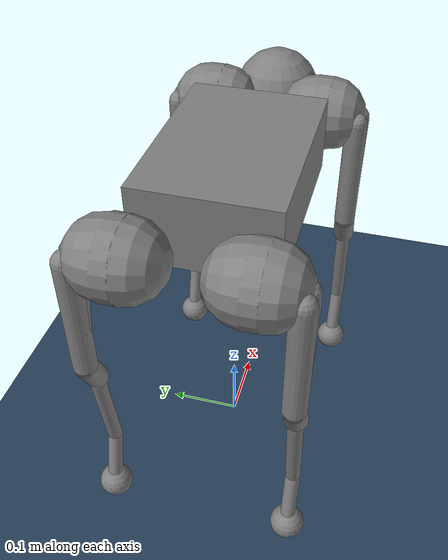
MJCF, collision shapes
<mujoco model="mjlab scene">
  <compiler angle="radian" meshdir="assets" />
  <size nkey="1" />
  <visual>
    <global azimuth="135" elevation="-25" offwidth="1920" offheight="1080" />
    <quality shadowsize="8192" />
    <headlight ambient="0.3 0.3 0.3" diffuse="0.6 0.6 0.6" specular="0 0 0" />
    <scale forcewidth="0.25" contactwidth="0.4" contactheight="0.15" framelength="5" framewidth="0.3" />
    <rgba haze="0.15 0.25 0.35 1" force="1 0 0 1" />
  </visual>
  <statistic meansize="0.03" extent="2" />
  <default>
    <default class="robot/main">
      <default class="robot/go1">
        <default class="robot/visual">
          <geom type="mesh" contype="0" conaffinity="0" group="2" material="dark" />
        </default>
        <default class="robot/collision">
          <geom type="capsule" group="3" />
          <default class="robot/thigh1">
            <geom size="0.015 0 0" />
          </default>
          <default class="robot/thigh2">
            <geom size="0.015 0 0" />
          </default>
          <default class="robot/thigh3">
            <geom size="0.015 0 0" />
          </default>
          <default class="robot/calf1">
            <geom size="0.01 0 0" />
          </default>
          <default class="robot/calf2">
            <geom size="0.01 0 0" />
          </default>
          <default class="robot/foot">
            <geom size="0.023 0 0" type="sphere" />
          </default>
        </default>
      </default>
    </default>
  </default>
  <asset>
    <texture type="2d" colorspace="auto" name="groundplane" builtin="checker" mark="edge" rgb1="0.2 0.3 0.4" rgb2="0.1 0.2 0.3" markrgb="0.8 0.8 0.8" width="300" height="300" />
    <material name="groundplane" texture="groundplane" texuniform="true" texrepeat="4 4" />
    <material name="robot/dark" rgba="0.2 0.2 0.2 1" />
    <mesh name="robot/trunk" class="robot/go1" content_type="model/stl" file="trunk.stl" />
    <mesh name="robot/hip" class="robot/go1" content_type="model/stl" file="hip.stl" />
    <mesh name="robot/thigh_mirror" class="robot/go1" content_type="model/stl" file="thigh_mirror.stl" />
    <mesh name="robot/calf" class="robot/go1" content_type="model/stl" file="calf.stl" />
    <mesh name="robot/thigh" class="robot/go1" content_type="model/stl" file="thigh.stl" />
  </asset>
  <worldbody>
    <light name="sun" pos="0 0 1.5" dir="0 0 -1" type="directional" />
    <body name="terrain">
      <geom name="terrain" size="0 0 0.01" type="plane" material="groundplane" />
    </body>
    <body name="robot/trunk" childclass="robot/go1" pos="0 0 0.445">
      <inertial pos="0.0223 0.002 -0.0005" quat="-0.00342088 0.705204 0.000106698 0.708996" mass="5.204" diaginertia="0.0716565 0.0630105 0.0168101" />
      <joint name="robot/floating_base_joint" type="free" />
      <geom class="robot/visual" material="robot/dark" mesh="robot/trunk" />
      <geom name="robot/trunk_collision" class="robot/collision" size="0.13 0.09 0.05" type="box" condim="1" solref="0.01" />
      <geom name="robot/head_collision" class="robot/collision" size="0.06" pos="0.24 0 0" type="sphere" condim="1" solref="0.01" />
      <site name="robot/head" pos="0.3 0 0" size="0.02" group="5" rgba="1 0 0 1" />
      <site name="robot/imu" pos="-0.01592 -0.06659 -0.00617" group="5" />
      <camera name="robot/tracking" pos="0.846 -1.3 0.316" quat="0.791164 0.554139 0.148485 0.211997" mode="trackcom" />
      <camera name="robot/top" pos="-1 0 1" quat="0.653281 0.270598 -0.270598 -0.653281" mode="trackcom" />
      <camera name="robot/side" pos="0 -1 0.3" quat="0.850651 0.525731 0 0" mode="trackcom" />
      <camera name="robot/back" pos="-1 0 0.3" quat="0.601501 0.371748 -0.371748 -0.601501" mode="trackcom" />
      <light pos="0 0 2" dir="0 0 -1" mode="trackcom" />
      <body name="robot/FR_hip" pos="0.1881 -0.04675 0">
        <inertial pos="-0.0049166 0.00762615 -8.865e-05" quat="0.507341 0.514169 0.495027 0.482891" mass="0.68" diaginertia="0.000734064 0.000468438 0.000398719" />
        <joint name="robot/FR_hip_joint" pos="0 0 0" axis="1 0 0" range="-0.863 0.863" armature="0.00402631" />
        <geom class="robot/visual" material="robot/dark" mesh="robot/hip" />
        <geom name="robot/FR_hip_collision" class="robot/collision" size="0.05 0.01" pos="0 -0.03 0" quat="0.707107 -0.707107 0 0" condim="1" solref="0.01" />
        <body name="robot/FR_thigh" pos="0 -0.08 0">
          <inertial pos="-0.00304722 0.019315 -0.0305004" quat="0.65243 -0.0272313 0.0775126 0.753383" mass="1.009" diaginertia="0.00478717 0.00460903 0.000709268" />
          <joint name="robot/FR_thigh_joint" pos="0 0 0" axis="0 1 0" range="-0.686 4.501" armature="0.00402631" />
          <geom class="robot/visual" material="robot/dark" mesh="robot/thigh_mirror" />
          <geom name="robot/FR_thigh_collision1" class="robot/thigh1" size="0.015 0.08" pos="-0.02 0 -0.08" condim="1" solref="0.01" />
          <geom name="robot/FR_thigh_collision2" class="robot/thigh2" size="0.015 0.0509902" pos="-0.01 0 -0.05" quat="0.995133 0 0.0985376 0" condim="1" solref="0.01" />
          <geom name="robot/FR_thigh_collision3" class="robot/thigh3" size="0.015 0.0223607" pos="-0.01 0 -0.18" quat="0.973249 0 -0.229753 0" condim="1" solref="0.01" />
          <body name="robot/FR_calf" pos="0 0 -0.213">
            <inertial pos="0.00429862 0.000976676 -0.146197" quat="0.691246 0.00357467 0.00511118 0.722592" mass="0.195862" diaginertia="0.00149767 0.00148468 3.58427e-05" />
            <joint name="robot/FR_calf_joint" pos="0 0 0" axis="0 1 0" range="-2.818 -0.888" armature="0.0090592" />
            <geom class="robot/visual" material="robot/dark" mesh="robot/calf" />
            <geom name="robot/FR_calf_collision1" class="robot/calf1" size="0.01 0.0657647" pos="0.01 0 -0.065" quat="0.997089 0 -0.0762506 0" condim="1" solref="0.01" />
            <geom name="robot/FR_calf_collision2" class="robot/calf2" size="0.01 0.0364005" pos="0.01 0 -0.165" quat="0.990334 0 0.138701 0" condim="1" solref="0.01" />
            <geom name="robot/FR_foot_collision" class="robot/foot" pos="0 0 -0.213" condim="6" priority="1" friction="1 0.005 0.0005" solref="0.01" />
            <site name="robot/FR" pos="0 0 -0.213" size="0.023" group="5" />
          </body>
        </body>
      </body>
      <body name="robot/FL_hip" pos="0.1881 0.04675 0">
        <inertial pos="-0.0049166 -0.00762615 -8.865e-05" quat="0.482891 0.495027 0.514169 0.507341" mass="0.68" diaginertia="0.000734064 0.000468438 0.000398719" />
        <joint name="robot/FL_hip_joint" pos="0 0 0" axis="1 0 0" range="-0.863 0.863" armature="0.00402631" />
        <geom class="robot/visual" material="robot/dark" mesh="robot/hip" />
        <geom name="robot/FL_hip_collision" class="robot/collision" size="0.05 0.01" pos="0 0.03 0" quat="0.707107 0.707107 0 0" condim="1" solref="0.01" />
        <body name="robot/FL_thigh" pos="0 0.08 0">
          <inertial pos="-0.00304722 -0.019315 -0.0305004" quat="0.753383 0.0775126 -0.0272313 0.65243" mass="1.009" diaginertia="0.00478717 0.00460903 0.000709268" />
          <joint name="robot/FL_thigh_joint" pos="0 0 0" axis="0 1 0" range="-0.686 4.501" armature="0.00402631" />
          <geom class="robot/visual" material="robot/dark" mesh="robot/thigh" />
          <geom name="robot/FL_thigh_collision1" class="robot/thigh1" size="0.015 0.08" pos="-0.02 0 -0.08" condim="1" solref="0.01" />
          <geom name="robot/FL_thigh_collision2" class="robot/thigh2" size="0.015 0.0509902" pos="-0.01 0 -0.05" quat="0.995133 0 0.0985376 0" condim="1" solref="0.01" />
          <geom name="robot/FL_thigh_collision3" class="robot/thigh3" size="0.015 0.0223607" pos="-0.01 0 -0.18" quat="0.973249 0 -0.229753 0" condim="1" solref="0.01" />
          <body name="robot/FL_calf" pos="0 0 -0.213">
            <inertial pos="0.00429862 0.000976676 -0.146197" quat="0.691246 0.00357467 0.00511118 0.722592" mass="0.195862" diaginertia="0.00149767 0.00148468 3.58427e-05" />
            <joint name="robot/FL_calf_joint" pos="0 0 0" axis="0 1 0" range="-2.818 -0.888" armature="0.0090592" />
            <geom class="robot/visual" material="robot/dark" mesh="robot/calf" />
            <geom name="robot/FL_calf_collision1" class="robot/calf1" size="0.01 0.0657647" pos="0.01 0 -0.065" quat="0.997089 0 -0.0762506 0" condim="1" solref="0.01" />
            <geom name="robot/FL_calf_collision2" class="robot/calf2" size="0.01 0.0364005" pos="0.01 0 -0.165" quat="0.990334 0 0.138701 0" condim="1" solref="0.01" />
            <geom name="robot/FL_foot_collision" class="robot/foot" pos="0 0 -0.213" condim="6" priority="1" friction="1 0.005 0.0005" solref="0.01" />
            <site name="robot/FL" pos="0 0 -0.213" size="0.023" group="5" />
          </body>
        </body>
      </body>
      <body name="robot/RR_hip" pos="-0.1881 -0.04675 0">
        <inertial pos="0.0049166 0.00762615 -8.865e-05" quat="0.495027 0.482891 0.507341 0.514169" mass="0.68" diaginertia="0.000734064 0.000468438 0.000398719" />
        <joint name="robot/RR_hip_joint" pos="0 0 0" axis="1 0 0" range="-0.863 0.863" armature="0.00402631" />
        <geom class="robot/visual" quat="0 0 0 -1" material="robot/dark" mesh="robot/hip" />
        <geom name="robot/RR_hip_collision" class="robot/collision" size="0.05 0.01" pos="0 -0.03 0" quat="0.707107 -0.707107 0 0" condim="1" solref="0.01" />
        <body name="robot/RR_thigh" pos="0 -0.08 0">
          <inertial pos="-0.00304722 0.019315 -0.0305004" quat="0.65243 -0.0272313 0.0775126 0.753383" mass="1.009" diaginertia="0.00478717 0.00460903 0.000709268" />
          <joint name="robot/RR_thigh_joint" pos="0 0 0" axis="0 1 0" range="-0.686 4.501" armature="0.00402631" />
          <geom class="robot/visual" material="robot/dark" mesh="robot/thigh_mirror" />
          <geom name="robot/RR_thigh_collision1" class="robot/thigh1" size="0.015 0.08" pos="-0.02 0 -0.08" condim="1" solref="0.01" />
          <geom name="robot/RR_thigh_collision2" class="robot/thigh2" size="0.015 0.0509902" pos="-0.01 0 -0.05" quat="0.995133 0 0.0985376 0" condim="1" solref="0.01" />
          <geom name="robot/RR_thigh_collision3" class="robot/thigh3" size="0.015 0.0223607" pos="-0.01 0 -0.18" quat="0.973249 0 -0.229753 0" condim="1" solref="0.01" />
          <body name="robot/RR_calf" pos="0 0 -0.213">
            <inertial pos="0.00429862 0.000976676 -0.146197" quat="0.691246 0.00357467 0.00511118 0.722592" mass="0.195862" diaginertia="0.00149767 0.00148468 3.58427e-05" />
            <joint name="robot/RR_calf_joint" pos="0 0 0" axis="0 1 0" range="-2.818 -0.888" armature="0.0090592" />
            <geom class="robot/visual" material="robot/dark" mesh="robot/calf" />
            <geom name="robot/RR_calf_collision1" class="robot/calf1" size="0.01 0.0657647" pos="0.01 0 -0.065" quat="0.997089 0 -0.0762506 0" condim="1" solref="0.01" />
            <geom name="robot/RR_calf_collision2" class="robot/calf2" size="0.01 0.0364005" pos="0.01 0 -0.165" quat="0.990334 0 0.138701 0" condim="1" solref="0.01" />
            <geom name="robot/RR_foot_collision" class="robot/foot" pos="0 0 -0.213" condim="6" priority="1" friction="1 0.005 0.0005" solref="0.01" />
            <site name="robot/RR" pos="0 0 -0.213" size="0.023" group="5" />
          </body>
        </body>
      </body>
      <body name="robot/RL_hip" pos="-0.1881 0.04675 0">
        <inertial pos="0.0049166 -0.00762615 -8.865e-05" quat="0.514169 0.507341 0.482891 0.495027" mass="0.68" diaginertia="0.000734064 0.000468438 0.000398719" />
        <joint name="robot/RL_hip_joint" pos="0 0 0" axis="1 0 0" range="-0.863 0.863" armature="0.00402631" />
        <geom class="robot/visual" quat="0 0 1 0" material="robot/dark" mesh="robot/hip" />
        <geom name="robot/RL_hip_collision" class="robot/collision" size="0.05 0.01" pos="0 0.03 0" quat="0.707107 0.707107 0 0" condim="1" solref="0.01" />
        <body name="robot/RL_thigh" pos="0 0.08 0">
          <inertial pos="-0.00304722 -0.019315 -0.0305004" quat="0.753383 0.0775126 -0.0272313 0.65243" mass="1.009" diaginertia="0.00478717 0.00460903 0.000709268" />
          <joint name="robot/RL_thigh_joint" pos="0 0 0" axis="0 1 0" range="-0.686 4.501" armature="0.00402631" />
          <geom class="robot/visual" material="robot/dark" mesh="robot/thigh" />
          <geom name="robot/RL_thigh_collision1" class="robot/thigh1" size="0.015 0.08" pos="-0.02 0 -0.08" condim="1" solref="0.01" />
          <geom name="robot/RL_thigh_collision2" class="robot/thigh2" size="0.015 0.0509902" pos="-0.01 0 -0.05" quat="0.995133 0 0.0985376 0" condim="1" solref="0.01" />
          <geom name="robot/RL_thigh_collision3" class="robot/thigh3" size="0.015 0.0223607" pos="-0.01 0 -0.18" quat="0.973249 0 -0.229753 0" condim="1" solref="0.01" />
          <body name="robot/RL_calf" pos="0 0 -0.213">
            <inertial pos="0.00429862 0.000976676 -0.146197" quat="0.691246 0.00357467 0.00511118 0.722592" mass="0.195862" diaginertia="0.00149767 0.00148468 3.58427e-05" />
            <joint name="robot/RL_calf_joint" pos="0 0 0" axis="0 1 0" range="-2.818 -0.888" armature="0.0090592" />
            <geom class="robot/visual" material="robot/dark" mesh="robot/calf" />
            <geom name="robot/RL_calf_collision1" class="robot/calf1" size="0.01 0.0657647" pos="0.01 0 -0.065" quat="0.997089 0 -0.0762506 0" condim="1" solref="0.01" />
            <geom name="robot/RL_calf_collision2" class="robot/calf2" size="0.01 0.0364005" pos="0.01 0 -0.165" quat="0.990334 0 0.138701 0" condim="1" solref="0.01" />
            <geom name="robot/RL_foot_collision" class="robot/foot" pos="0 0 -0.213" condim="6" priority="1" friction="1 0.005 0.0005" solref="0.01" />
            <site name="robot/RL" pos="0 0 -0.213" size="0.023" group="5" />
          </body>
        </body>
      </body>
    </body>
  </worldbody>
  <actuator>
    <general name="robot/FR_hip_joint" joint="robot/FR_hip_joint" ctrllimited="false" ctrlrange="-2.35401 2.35401" forcelimited="true" forcerange="-23.7 23.7" biastype="affine" gainprm="15.8952" biasprm="0 -15.8952 -1.01192" />
    <general name="robot/FR_thigh_joint" joint="robot/FR_thigh_joint" ctrllimited="false" ctrlrange="-2.17701 5.99201" forcelimited="true" forcerange="-23.7 23.7" biastype="affine" gainprm="15.8952" biasprm="0 -15.8952 -1.01192" />
    <general name="robot/FL_hip_joint" joint="robot/FL_hip_joint" ctrllimited="false" ctrlrange="-2.35401 2.35401" forcelimited="true" forcerange="-23.7 23.7" biastype="affine" gainprm="15.8952" biasprm="0 -15.8952 -1.01192" />
    <general name="robot/FL_thigh_joint" joint="robot/FL_thigh_joint" ctrllimited="false" ctrlrange="-2.17701 5.99201" forcelimited="true" forcerange="-23.7 23.7" biastype="affine" gainprm="15.8952" biasprm="0 -15.8952 -1.01192" />
    <general name="robot/RR_hip_joint" joint="robot/RR_hip_joint" ctrllimited="false" ctrlrange="-2.35401 2.35401" forcelimited="true" forcerange="-23.7 23.7" biastype="affine" gainprm="15.8952" biasprm="0 -15.8952 -1.01192" />
    <general name="robot/RR_thigh_joint" joint="robot/RR_thigh_joint" ctrllimited="false" ctrlrange="-2.17701 5.99201" forcelimited="true" forcerange="-23.7 23.7" biastype="affine" gainprm="15.8952" biasprm="0 -15.8952 -1.01192" />
    <general name="robot/RL_hip_joint" joint="robot/RL_hip_joint" ctrllimited="false" ctrlrange="-2.35401 2.35401" forcelimited="true" forcerange="-23.7 23.7" biastype="affine" gainprm="15.8952" biasprm="0 -15.8952 -1.01192" />
    <general name="robot/RL_thigh_joint" joint="robot/RL_thigh_joint" ctrllimited="false" ctrlrange="-2.17701 5.99201" forcelimited="true" forcerange="-23.7 23.7" biastype="affine" gainprm="15.8952" biasprm="0 -15.8952 -1.01192" />
    <general name="robot/FR_calf_joint" joint="robot/FR_calf_joint" ctrllimited="false" ctrlrange="-3.81201 0.106008" forcelimited="true" forcerange="-35.55 35.55" biastype="affine" gainprm="35.7643" biasprm="0 -35.7643 -2.27683" />
    <general name="robot/FL_calf_joint" joint="robot/FL_calf_joint" ctrllimited="false" ctrlrange="-3.81201 0.106008" forcelimited="true" forcerange="-35.55 35.55" biastype="affine" gainprm="35.7643" biasprm="0 -35.7643 -2.27683" />
    <general name="robot/RR_calf_joint" joint="robot/RR_calf_joint" ctrllimited="false" ctrlrange="-3.81201 0.106008" forcelimited="true" forcerange="-35.55 35.55" biastype="affine" gainprm="35.7643" biasprm="0 -35.7643 -2.27683" />
    <general name="robot/RL_calf_joint" joint="robot/RL_calf_joint" ctrllimited="false" ctrlrange="-3.81201 0.106008" forcelimited="true" forcerange="-35.55 35.55" biastype="affine" gainprm="35.7643" biasprm="0 -35.7643 -2.27683" />
  </actuator>
  <sensor>
    <gyro site="robot/imu" name="robot/imu_ang_vel" />
    <velocimeter site="robot/imu" name="robot/imu_lin_vel" />
    <accelerometer site="robot/imu" name="robot/imu_lin_acc" />
    <subtreeangmom body="robot/trunk" name="robot/root_angmom" />
    <contact geom1="robot/FR_foot_collision" body2="terrain" reduce="netforce" name="feet_ground_contact_FR_foot_collision_found" />
    <contact geom1="robot/FR_foot_collision" body2="terrain" data="force" reduce="netforce" name="feet_ground_contact_FR_foot_collision_force" />
    <contact geom1="robot/FL_foot_collision" body2="terrain" reduce="netforce" name="feet_ground_contact_FL_foot_collision_found" />
    <contact geom1="robot/FL_foot_collision" body2="terrain" data="force" reduce="netforce" name="feet_ground_contact_FL_foot_collision_force" />
    <contact geom1="robot/RR_foot_collision" body2="terrain" reduce="netforce" name="feet_ground_contact_RR_foot_collision_found" />
    <contact geom1="robot/RR_foot_collision" body2="terrain" data="force" reduce="netforce" name="feet_ground_contact_RR_foot_collision_force" />
    <contact geom1="robot/RL_foot_collision" body2="terrain" reduce="netforce" name="feet_ground_contact_RL_foot_collision_found" />
    <contact geom1="robot/RL_foot_collision" body2="terrain" data="force" reduce="netforce" name="feet_ground_contact_RL_foot_collision_force" />
  </sensor>
  <keyframe>
    <key name="init_state" qpos="0 0 0.278 1 0 0 0 0.1 0.9 -1.8 -0.1 0.9 -1.8 0.1 0.9 -1.8 -0.1 0.9 -1.8" ctrl="0.1 0.9 -0.1 0.9 0.1 0.9 -0.1 0.9 -1.8 -1.8 -1.8 -1.8" />
  </keyframe>
</mujoco>
